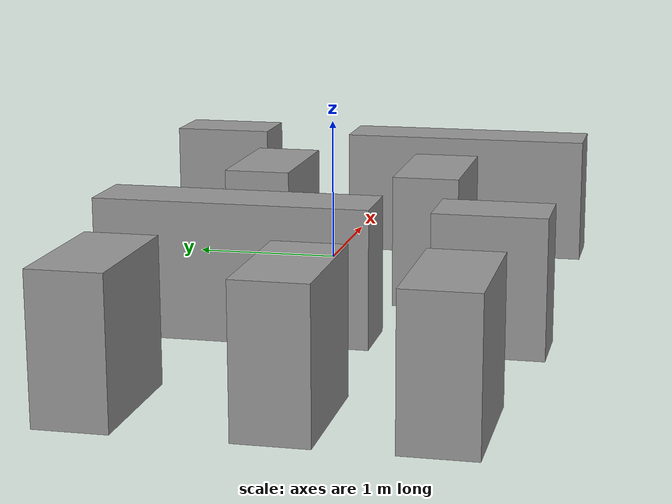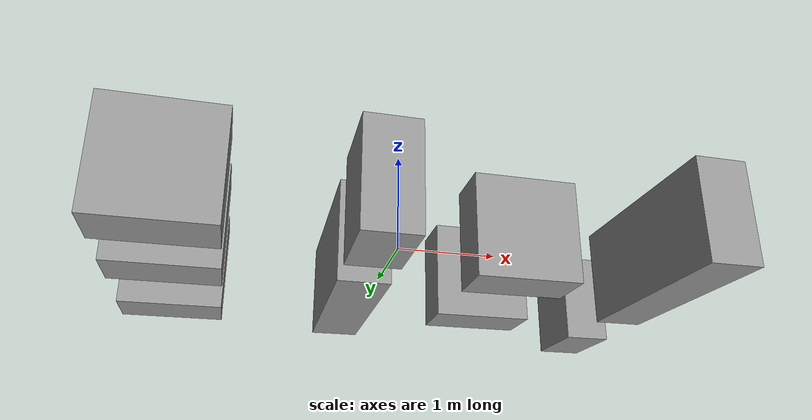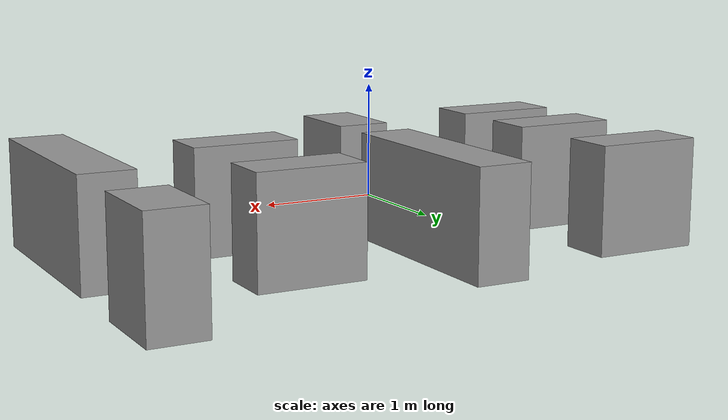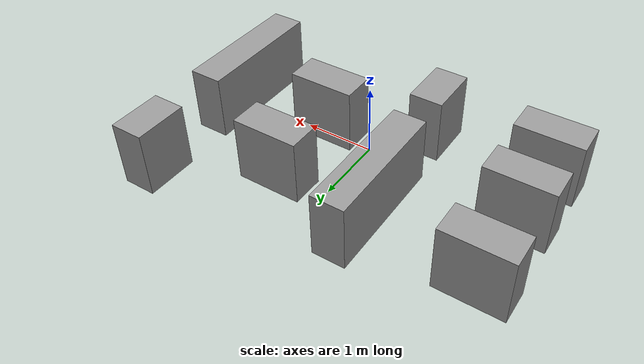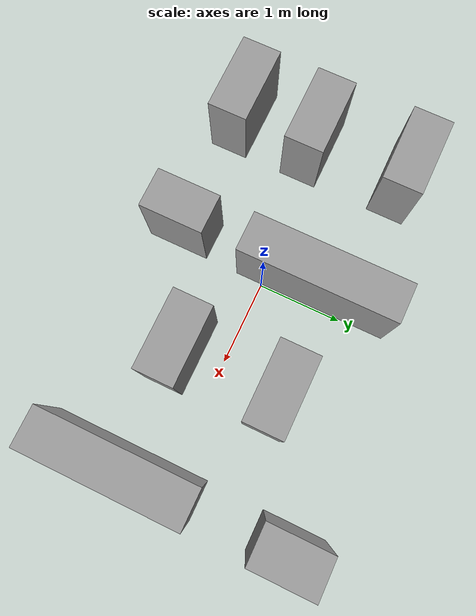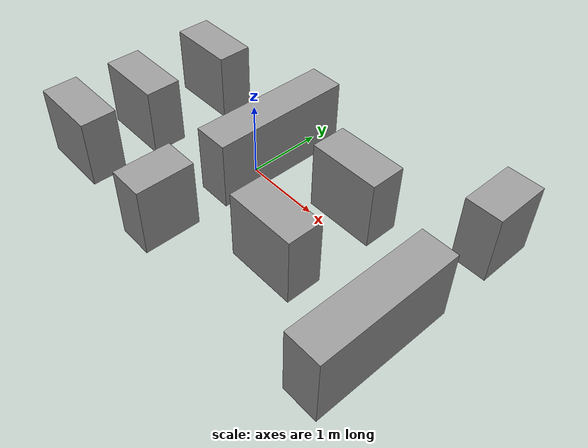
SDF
<?xml version='1.0'?>
<sdf version='1.7'>
  <model name='MAZE'>
    <link name='link_0'>
      <inertial>
        <mass>1</mass>
        <inertia>
          <ixx>0.166667</ixx>
          <ixy>0</ixy>
          <ixz>0</ixz>
          <iyy>0.166667</iyy>
          <iyz>0</iyz>
          <izz>0.166667</izz>
        </inertia>
        <pose>0 0 0 0 -0 0</pose>
      </inertial>
      <pose>-2.15855 1.01643 0 0 -0 0</pose>
      <gravity>1</gravity>
      <self_collide>0</self_collide>
      <kinematic>0</kinematic>
      <enable_wind>0</enable_wind>
      <visual name='visual'>
        <pose>0 0 0 0 -0 0</pose>
        <geometry>
          <box>
            <size>1 0.5 1</size>
          </box>
        </geometry>
        <material>
          <lighting>1</lighting>
          <script>
            <uri>file://media/materials/scripts/gazebo.material</uri>
            <name>Gazebo/Grey</name>
          </script>
          <shader type='pixel'>
            <normal_map>__default__</normal_map>
          </shader>
          <ambient>0.3 0.3 0.3 1</ambient>
          <diffuse>0.7 0.7 0.7 1</diffuse>
          <specular>0.01 0.01 0.01 1</specular>
          <emissive>0 0 0 1</emissive>
        </material>
        <transparency>0</transparency>
        <cast_shadows>1</cast_shadows>
      </visual>
      <collision name='collision'>
        <laser_retro>0</laser_retro>
        <max_contacts>10</max_contacts>
        <pose>0 0 0 0 -0 0</pose>
        <geometry>
          <box>
            <size>1 0.5 1</size>
          </box>
        </geometry>
        <surface>
          <friction>
            <ode>
              <mu>1</mu>
              <mu2>1</mu2>
              <fdir1>0 0 0</fdir1>
              <slip1>0</slip1>
              <slip2>0</slip2>
            </ode>
            <torsional>
              <coefficient>1</coefficient>
              <patch_radius>0</patch_radius>
              <surface_radius>0</surface_radius>
              <use_patch_radius>1</use_patch_radius>
              <ode>
                <slip>0</slip>
              </ode>
            </torsional>
          </friction>
          <bounce>
            <restitution_coefficient>0</restitution_coefficient>
            <threshold>1e+06</threshold>
          </bounce>
          <contact>
            <collide_without_contact>0</collide_without_contact>
            <collide_without_contact_bitmask>1</collide_without_contact_bitmask>
            <collide_bitmask>1</collide_bitmask>
            <ode>
              <soft_cfm>0</soft_cfm>
              <soft_erp>0.2</soft_erp>
              <kp>1e+13</kp>
              <kd>1</kd>
              <max_vel>0.01</max_vel>
              <min_depth>0</min_depth>
            </ode>
            <bullet>
              <split_impulse>1</split_impulse>
              <split_impulse_penetration_threshold>-0.01</split_impulse_penetration_threshold>
              <soft_cfm>0</soft_cfm>
              <soft_erp>0.2</soft_erp>
              <kp>1e+13</kp>
              <kd>1</kd>
            </bullet>
          </contact>
        </surface>
      </collision>
    </link>
    <link name='link_0_clone'>
      <inertial>
        <mass>1</mass>
        <inertia>
          <ixx>0.166667</ixx>
          <ixy>0</ixy>
          <ixz>0</ixz>
          <iyy>0.166667</iyy>
          <iyz>0</iyz>
          <izz>0.166667</izz>
        </inertia>
        <pose>0 0 0 0 -0 0</pose>
      </inertial>
      <pose>-2.14472 -0.227008 0 0 -0 0</pose>
      <gravity>1</gravity>
      <self_collide>0</self_collide>
      <kinematic>0</kinematic>
      <enable_wind>0</enable_wind>
      <visual name='visual'>
        <pose>0 0 0 0 -0 0</pose>
        <geometry>
          <box>
            <size>1 0.5 1</size>
          </box>
        </geometry>
        <material>
          <lighting>1</lighting>
          <script>
            <uri>file://media/materials/scripts/gazebo.material</uri>
            <name>Gazebo/Grey</name>
          </script>
          <shader type='pixel'>
            <normal_map>__default__</normal_map>
          </shader>
          <ambient>0.3 0.3 0.3 1</ambient>
          <diffuse>0.7 0.7 0.7 1</diffuse>
          <specular>0.01 0.01 0.01 1</specular>
          <emissive>0 0 0 1</emissive>
        </material>
        <transparency>0</transparency>
        <cast_shadows>1</cast_shadows>
      </visual>
      <collision name='collision'>
        <laser_retro>0</laser_retro>
        <max_contacts>10</max_contacts>
        <pose>0 0 0 0 -0 0</pose>
        <geometry>
          <box>
            <size>1 0.5 1</size>
          </box>
        </geometry>
        <surface>
          <friction>
            <ode>
              <mu>1</mu>
              <mu2>1</mu2>
              <fdir1>0 0 0</fdir1>
              <slip1>0</slip1>
              <slip2>0</slip2>
            </ode>
            <torsional>
              <coefficient>1</coefficient>
              <patch_radius>0</patch_radius>
              <surface_radius>0</surface_radius>
              <use_patch_radius>1</use_patch_radius>
              <ode>
                <slip>0</slip>
              </ode>
            </torsional>
          </friction>
          <bounce>
            <restitution_coefficient>0</restitution_coefficient>
            <threshold>1e+06</threshold>
          </bounce>
          <contact>
            <collide_without_contact>0</collide_without_contact>
            <collide_without_contact_bitmask>1</collide_without_contact_bitmask>
            <collide_bitmask>1</collide_bitmask>
            <ode>
              <soft_cfm>0</soft_cfm>
              <soft_erp>0.2</soft_erp>
              <kp>1e+13</kp>
              <kd>1</kd>
              <max_vel>0.01</max_vel>
              <min_depth>0</min_depth>
            </ode>
            <bullet>
              <split_impulse>1</split_impulse>
              <split_impulse_penetration_threshold>-0.01</split_impulse_penetration_threshold>
              <soft_cfm>0</soft_cfm>
              <soft_erp>0.2</soft_erp>
              <kp>1e+13</kp>
              <kd>1</kd>
            </bullet>
          </contact>
        </surface>
      </collision>
    </link>
    <link name='link_0_clone_0'>
      <inertial>
        <mass>1</mass>
        <inertia>
          <ixx>0.166667</ixx>
          <ixy>0</ixy>
          <ixz>0</ixz>
          <iyy>0.166667</iyy>
          <iyz>0</iyz>
          <izz>0.166667</izz>
        </inertia>
        <pose>0 0 0 0 -0 0</pose>
      </inertial>
      <pose>-2.1412 -1.22475 0 0 -0 0</pose>
      <gravity>1</gravity>
      <self_collide>0</self_collide>
      <kinematic>0</kinematic>
      <enable_wind>0</enable_wind>
      <visual name='visual'>
        <pose>0 0 0 0 -0 0</pose>
        <geometry>
          <box>
            <size>1 0.5 1</size>
          </box>
        </geometry>
        <material>
          <lighting>1</lighting>
          <script>
            <uri>file://media/materials/scripts/gazebo.material</uri>
            <name>Gazebo/Grey</name>
          </script>
          <shader type='pixel'>
            <normal_map>__default__</normal_map>
          </shader>
          <ambient>0.3 0.3 0.3 1</ambient>
          <diffuse>0.7 0.7 0.7 1</diffuse>
          <specular>0.01 0.01 0.01 1</specular>
          <emissive>0 0 0 1</emissive>
        </material>
        <transparency>0</transparency>
        <cast_shadows>1</cast_shadows>
      </visual>
      <collision name='collision'>
        <laser_retro>0</laser_retro>
        <max_contacts>10</max_contacts>
        <pose>0 0 0 0 -0 0</pose>
        <geometry>
          <box>
            <size>1 0.5 1</size>
          </box>
        </geometry>
        <surface>
          <friction>
            <ode>
              <mu>1</mu>
              <mu2>1</mu2>
              <fdir1>0 0 0</fdir1>
              <slip1>0</slip1>
              <slip2>0</slip2>
            </ode>
            <torsional>
              <coefficient>1</coefficient>
              <patch_radius>0</patch_radius>
              <surface_radius>0</surface_radius>
              <use_patch_radius>1</use_patch_radius>
              <ode>
                <slip>0</slip>
              </ode>
            </torsional>
          </friction>
          <bounce>
            <restitution_coefficient>0</restitution_coefficient>
            <threshold>1e+06</threshold>
          </bounce>
          <contact>
            <collide_without_contact>0</collide_without_contact>
            <collide_without_contact_bitmask>1</collide_without_contact_bitmask>
            <collide_bitmask>1</collide_bitmask>
            <ode>
              <soft_cfm>0</soft_cfm>
              <soft_erp>0.2</soft_erp>
              <kp>1e+13</kp>
              <kd>1</kd>
              <max_vel>0.01</max_vel>
              <min_depth>0</min_depth>
            </ode>
            <bullet>
              <split_impulse>1</split_impulse>
              <split_impulse_penetration_threshold>-0.01</split_impulse_penetration_threshold>
              <soft_cfm>0</soft_cfm>
              <soft_erp>0.2</soft_erp>
              <kp>1e+13</kp>
              <kd>1</kd>
            </bullet>
          </contact>
        </surface>
      </collision>
    </link>
    <link name='link_0_clone_1'>
      <inertial>
        <mass>1</mass>
        <inertia>
          <ixx>0.166667</ixx>
          <ixy>0</ixy>
          <ixz>0</ixz>
          <iyy>0.166667</iyy>
          <iyz>0</iyz>
          <izz>0.166667</izz>
        </inertia>
        <pose>0 0 0 0 -0 0</pose>
      </inertial>
      <pose>-0.393911 0.603019 0 0 -0 0</pose>
      <gravity>1</gravity>
      <self_collide>0</self_collide>
      <kinematic>0</kinematic>
      <enable_wind>0</enable_wind>
      <visual name='visual'>
        <pose>0 0 0 0 -0 0</pose>
        <geometry>
          <box>
            <size>0.5 2 1</size>
          </box>
        </geometry>
        <material>
          <lighting>1</lighting>
          <script>
            <uri>file://media/materials/scripts/gazebo.material</uri>
            <name>Gazebo/Grey</name>
          </script>
          <shader type='pixel'>
            <normal_map>__default__</normal_map>
          </shader>
          <ambient>0.3 0.3 0.3 1</ambient>
          <diffuse>0.7 0.7 0.7 1</diffuse>
          <specular>0.01 0.01 0.01 1</specular>
          <emissive>0 0 0 1</emissive>
        </material>
        <transparency>0</transparency>
        <cast_shadows>1</cast_shadows>
      </visual>
      <collision name='collision'>
        <laser_retro>0</laser_retro>
        <max_contacts>10</max_contacts>
        <pose>0 0 0 0 -0 0</pose>
        <geometry>
          <box>
            <size>0.5 2 1</size>
          </box>
        </geometry>
        <surface>
          <friction>
            <ode>
              <mu>1</mu>
              <mu2>1</mu2>
              <fdir1>0 0 0</fdir1>
              <slip1>0</slip1>
              <slip2>0</slip2>
            </ode>
            <torsional>
              <coefficient>1</coefficient>
              <patch_radius>0</patch_radius>
              <surface_radius>0</surface_radius>
              <use_patch_radius>1</use_patch_radius>
              <ode>
                <slip>0</slip>
              </ode>
            </torsional>
          </friction>
          <bounce>
            <restitution_coefficient>0</restitution_coefficient>
            <threshold>1e+06</threshold>
          </bounce>
          <contact>
            <collide_without_contact>0</collide_without_contact>
            <collide_without_contact_bitmask>1</collide_without_contact_bitmask>
            <collide_bitmask>1</collide_bitmask>
            <ode>
              <soft_cfm>0</soft_cfm>
              <soft_erp>0.2</soft_erp>
              <kp>1e+13</kp>
              <kd>1</kd>
              <max_vel>0.01</max_vel>
              <min_depth>0</min_depth>
            </ode>
            <bullet>
              <split_impulse>1</split_impulse>
              <split_impulse_penetration_threshold>-0.01</split_impulse_penetration_threshold>
              <soft_cfm>0</soft_cfm>
              <soft_erp>0.2</soft_erp>
              <kp>1e+13</kp>
              <kd>1</kd>
            </bullet>
          </contact>
        </surface>
      </collision>
    </link>
    <link name='link_0_clone_1_clone'>
      <inertial>
        <mass>1</mass>
        <inertia>
          <ixx>0.166667</ixx>
          <ixy>0</ixy>
          <ixz>0</ixz>
          <iyy>0.166667</iyy>
          <iyz>0</iyz>
          <izz>0.166667</izz>
        </inertia>
        <pose>0 0 0 0 -0 0</pose>
      </inertial>
      <pose>-0.400091 -1.22987 0 0 -0 0</pose>
      <gravity>1</gravity>
      <self_collide>0</self_collide>
      <kinematic>0</kinematic>
      <enable_wind>0</enable_wind>
      <visual name='visual'>
        <pose>0 0 0 0 -0 0</pose>
        <geometry>
          <box>
            <size>0.5 0.8 1</size>
          </box>
        </geometry>
        <material>
          <lighting>1</lighting>
          <script>
            <uri>file://media/materials/scripts/gazebo.material</uri>
            <name>Gazebo/Grey</name>
          </script>
          <shader type='pixel'>
            <normal_map>__default__</normal_map>
          </shader>
          <ambient>0.3 0.3 0.3 1</ambient>
          <diffuse>0.7 0.7 0.7 1</diffuse>
          <specular>0.01 0.01 0.01 1</specular>
          <emissive>0 0 0 1</emissive>
        </material>
        <transparency>0</transparency>
        <cast_shadows>1</cast_shadows>
      </visual>
      <collision name='collision'>
        <laser_retro>0</laser_retro>
        <max_contacts>10</max_contacts>
        <pose>0 0 0 0 -0 0</pose>
        <geometry>
          <box>
            <size>0.5 0.8 1</size>
          </box>
        </geometry>
        <surface>
          <friction>
            <ode>
              <mu>1</mu>
              <mu2>1</mu2>
              <fdir1>0 0 0</fdir1>
              <slip1>0</slip1>
              <slip2>0</slip2>
            </ode>
            <torsional>
              <coefficient>1</coefficient>
              <patch_radius>0</patch_radius>
              <surface_radius>0</surface_radius>
              <use_patch_radius>1</use_patch_radius>
              <ode>
                <slip>0</slip>
              </ode>
            </torsional>
          </friction>
          <bounce>
            <restitution_coefficient>0</restitution_coefficient>
            <threshold>1e+06</threshold>
          </bounce>
          <contact>
            <collide_without_contact>0</collide_without_contact>
            <collide_without_contact_bitmask>1</collide_without_contact_bitmask>
            <collide_bitmask>1</collide_bitmask>
            <ode>
              <soft_cfm>0</soft_cfm>
              <soft_erp>0.2</soft_erp>
              <kp>1e+13</kp>
              <kd>1</kd>
              <max_vel>0.01</max_vel>
              <min_depth>0</min_depth>
            </ode>
            <bullet>
              <split_impulse>1</split_impulse>
              <split_impulse_penetration_threshold>-0.01</split_impulse_penetration_threshold>
              <soft_cfm>0</soft_cfm>
              <soft_erp>0.2</soft_erp>
              <kp>1e+13</kp>
              <kd>1</kd>
            </bullet>
          </contact>
        </surface>
      </collision>
    </link>
    <link name='link_0_clone_1_clone_0'>
      <inertial>
        <mass>1</mass>
        <inertia>
          <ixx>0.166667</ixx>
          <ixy>0</ixy>
          <ixz>0</ixz>
          <iyy>0.166667</iyy>
          <iyz>0</iyz>
          <izz>0.166667</izz>
        </inertia>
        <pose>0 0 0 0 -0 0</pose>
      </inertial>
      <pose>2.57024 -0.604209 0 0 -0 0</pose>
      <gravity>1</gravity>
      <self_collide>0</self_collide>
      <kinematic>0</kinematic>
      <enable_wind>0</enable_wind>
      <visual name='visual'>
        <pose>0 0 0 0 -0 0</pose>
        <geometry>
          <box>
            <size>0.5 2 1</size>
          </box>
        </geometry>
        <material>
          <lighting>1</lighting>
          <script>
            <uri>file://media/materials/scripts/gazebo.material</uri>
            <name>Gazebo/Grey</name>
          </script>
          <shader type='pixel'>
            <normal_map>__default__</normal_map>
          </shader>
          <ambient>0.3 0.3 0.3 1</ambient>
          <diffuse>0.7 0.7 0.7 1</diffuse>
          <specular>0.01 0.01 0.01 1</specular>
          <emissive>0 0 0 1</emissive>
        </material>
        <transparency>0</transparency>
        <cast_shadows>1</cast_shadows>
      </visual>
      <collision name='collision'>
        <laser_retro>0</laser_retro>
        <max_contacts>10</max_contacts>
        <pose>0 0 0 0 -0 0</pose>
        <geometry>
          <box>
            <size>0.5 2 1</size>
          </box>
        </geometry>
        <surface>
          <friction>
            <ode>
              <mu>1</mu>
              <mu2>1</mu2>
              <fdir1>0 0 0</fdir1>
              <slip1>0</slip1>
              <slip2>0</slip2>
            </ode>
            <torsional>
              <coefficient>1</coefficient>
              <patch_radius>0</patch_radius>
              <surface_radius>0</surface_radius>
              <use_patch_radius>1</use_patch_radius>
              <ode>
                <slip>0</slip>
              </ode>
            </torsional>
          </friction>
          <bounce>
            <restitution_coefficient>0</restitution_coefficient>
            <threshold>1e+06</threshold>
          </bounce>
          <contact>
            <collide_without_contact>0</collide_without_contact>
            <collide_without_contact_bitmask>1</collide_without_contact_bitmask>
            <collide_bitmask>1</collide_bitmask>
            <ode>
              <soft_cfm>0</soft_cfm>
              <soft_erp>0.2</soft_erp>
              <kp>1e+13</kp>
              <kd>1</kd>
              <max_vel>0.01</max_vel>
              <min_depth>0</min_depth>
            </ode>
            <bullet>
              <split_impulse>1</split_impulse>
              <split_impulse_penetration_threshold>-0.01</split_impulse_penetration_threshold>
              <soft_cfm>0</soft_cfm>
              <soft_erp>0.2</soft_erp>
              <kp>1e+13</kp>
              <kd>1</kd>
            </bullet>
          </contact>
        </surface>
      </collision>
    </link>
    <link name='link_0_clone_1_clone_clone'>
      <inertial>
        <mass>1</mass>
        <inertia>
          <ixx>0.166667</ixx>
          <ixy>0</ixy>
          <ixz>0</ixz>
          <iyy>0.166667</iyy>
          <iyz>0</iyz>
          <izz>0.166667</izz>
        </inertia>
        <pose>0 0 0 0 -0 0</pose>
      </inertial>
      <pose>2.58176 1.52586 0 0 -0 0</pose>
      <gravity>1</gravity>
      <self_collide>0</self_collide>
      <kinematic>0</kinematic>
      <enable_wind>0</enable_wind>
      <visual name='visual'>
        <pose>0 0 0 0 -0 0</pose>
        <geometry>
          <box>
            <size>0.5 0.8 1</size>
          </box>
        </geometry>
        <material>
          <lighting>1</lighting>
          <script>
            <uri>file://media/materials/scripts/gazebo.material</uri>
            <name>Gazebo/Grey</name>
          </script>
          <shader type='pixel'>
            <normal_map>__default__</normal_map>
          </shader>
          <ambient>0.3 0.3 0.3 1</ambient>
          <diffuse>0.7 0.7 0.7 1</diffuse>
          <specular>0.01 0.01 0.01 1</specular>
          <emissive>0 0 0 1</emissive>
        </material>
        <transparency>0</transparency>
        <cast_shadows>1</cast_shadows>
      </visual>
      <collision name='collision'>
        <laser_retro>0</laser_retro>
        <max_contacts>10</max_contacts>
        <pose>0 0 0 0 -0 0</pose>
        <geometry>
          <box>
            <size>0.5 0.8 1</size>
          </box>
        </geometry>
        <surface>
          <friction>
            <ode>
              <mu>1</mu>
              <mu2>1</mu2>
              <fdir1>0 0 0</fdir1>
              <slip1>0</slip1>
              <slip2>0</slip2>
            </ode>
            <torsional>
              <coefficient>1</coefficient>
              <patch_radius>0</patch_radius>
              <surface_radius>0</surface_radius>
              <use_patch_radius>1</use_patch_radius>
              <ode>
                <slip>0</slip>
              </ode>
            </torsional>
          </friction>
          <bounce>
            <restitution_coefficient>0</restitution_coefficient>
            <threshold>1e+06</threshold>
          </bounce>
          <contact>
            <collide_without_contact>0</collide_without_contact>
            <collide_without_contact_bitmask>1</collide_without_contact_bitmask>
            <collide_bitmask>1</collide_bitmask>
            <ode>
              <soft_cfm>0</soft_cfm>
              <soft_erp>0.2</soft_erp>
              <kp>1e+13</kp>
              <kd>1</kd>
              <max_vel>0.01</max_vel>
              <min_depth>0</min_depth>
            </ode>
            <bullet>
              <split_impulse>1</split_impulse>
              <split_impulse_penetration_threshold>-0.01</split_impulse_penetration_threshold>
              <soft_cfm>0</soft_cfm>
              <soft_erp>0.2</soft_erp>
              <kp>1e+13</kp>
              <kd>1</kd>
            </bullet>
          </contact>
        </surface>
      </collision>
    </link>
    <link name='link_0_clone_clone'>
      <inertial>
        <mass>1</mass>
        <inertia>
          <ixx>0.166667</ixx>
          <ixy>0</ixy>
          <ixz>0</ixz>
          <iyy>0.166667</iyy>
          <iyz>0</iyz>
          <izz>0.166667</izz>
        </inertia>
        <pose>0 0 0 0 -0 0</pose>
      </inertial>
      <pose>1.04324 -0.584471 0 0 -0 0</pose>
      <gravity>1</gravity>
      <self_collide>0</self_collide>
      <kinematic>0</kinematic>
      <enable_wind>0</enable_wind>
      <visual name='visual'>
        <pose>0 0 0 0 -0 0</pose>
        <geometry>
          <box>
            <size>1 0.5 1</size>
          </box>
        </geometry>
        <material>
          <lighting>1</lighting>
          <script>
            <uri>file://media/materials/scripts/gazebo.material</uri>
            <name>Gazebo/Grey</name>
          </script>
          <shader type='pixel'>
            <normal_map>__default__</normal_map>
          </shader>
          <ambient>0.3 0.3 0.3 1</ambient>
          <diffuse>0.7 0.7 0.7 1</diffuse>
          <specular>0.01 0.01 0.01 1</specular>
          <emissive>0 0 0 1</emissive>
        </material>
        <transparency>0</transparency>
        <cast_shadows>1</cast_shadows>
      </visual>
      <collision name='collision'>
        <laser_retro>0</laser_retro>
        <max_contacts>10</max_contacts>
        <pose>0 0 0 0 -0 0</pose>
        <geometry>
          <box>
            <size>1 0.5 1</size>
          </box>
        </geometry>
        <surface>
          <friction>
            <ode>
              <mu>1</mu>
              <mu2>1</mu2>
              <fdir1>0 0 0</fdir1>
              <slip1>0</slip1>
              <slip2>0</slip2>
            </ode>
            <torsional>
              <coefficient>1</coefficient>
              <patch_radius>0</patch_radius>
              <surface_radius>0</surface_radius>
              <use_patch_radius>1</use_patch_radius>
              <ode>
                <slip>0</slip>
              </ode>
            </torsional>
          </friction>
          <bounce>
            <restitution_coefficient>0</restitution_coefficient>
            <threshold>1e+06</threshold>
          </bounce>
          <contact>
            <collide_without_contact>0</collide_without_contact>
            <collide_without_contact_bitmask>1</collide_without_contact_bitmask>
            <collide_bitmask>1</collide_bitmask>
            <ode>
              <soft_cfm>0</soft_cfm>
              <soft_erp>0.2</soft_erp>
              <kp>1e+13</kp>
              <kd>1</kd>
              <max_vel>0.01</max_vel>
              <min_depth>0</min_depth>
            </ode>
            <bullet>
              <split_impulse>1</split_impulse>
              <split_impulse_penetration_threshold>-0.01</split_impulse_penetration_threshold>
              <soft_cfm>0</soft_cfm>
              <soft_erp>0.2</soft_erp>
              <kp>1e+13</kp>
              <kd>1</kd>
            </bullet>
          </contact>
        </surface>
      </collision>
    </link>
    <link name='link_0_clone_clone_0'>
      <inertial>
        <mass>1</mass>
        <inertia>
          <ixx>0.166667</ixx>
          <ixy>0</ixy>
          <ixz>0</ixz>
          <iyy>0.166667</iyy>
          <iyz>0</iyz>
          <izz>0.166667</izz>
        </inertia>
        <pose>0 0 0 0 -0 0</pose>
      </inertial>
      <pose>1.04324 0.725009 0 0 -0 0</pose>
      <gravity>1</gravity>
      <self_collide>0</self_collide>
      <kinematic>0</kinematic>
      <enable_wind>0</enable_wind>
      <visual name='visual'>
        <pose>0 0 0 0 -0 0</pose>
        <geometry>
          <box>
            <size>1 0.5 1</size>
          </box>
        </geometry>
        <material>
          <lighting>1</lighting>
          <script>
            <uri>file://media/materials/scripts/gazebo.material</uri>
            <name>Gazebo/Grey</name>
          </script>
          <shader type='pixel'>
            <normal_map>__default__</normal_map>
          </shader>
          <ambient>0.3 0.3 0.3 1</ambient>
          <diffuse>0.7 0.7 0.7 1</diffuse>
          <specular>0.01 0.01 0.01 1</specular>
          <emissive>0 0 0 1</emissive>
        </material>
        <transparency>0</transparency>
        <cast_shadows>1</cast_shadows>
      </visual>
      <collision name='collision'>
        <laser_retro>0</laser_retro>
        <max_contacts>10</max_contacts>
        <pose>0 0 0 0 -0 0</pose>
        <geometry>
          <box>
            <size>1 0.5 1</size>
          </box>
        </geometry>
        <surface>
          <friction>
            <ode>
              <mu>1</mu>
              <mu2>1</mu2>
              <fdir1>0 0 0</fdir1>
              <slip1>0</slip1>
              <slip2>0</slip2>
            </ode>
            <torsional>
              <coefficient>1</coefficient>
              <patch_radius>0</patch_radius>
              <surface_radius>0</surface_radius>
              <use_patch_radius>1</use_patch_radius>
              <ode>
                <slip>0</slip>
              </ode>
            </torsional>
          </friction>
          <bounce>
            <restitution_coefficient>0</restitution_coefficient>
            <threshold>1e+06</threshold>
          </bounce>
          <contact>
            <collide_without_contact>0</collide_without_contact>
            <collide_without_contact_bitmask>1</collide_without_contact_bitmask>
            <collide_bitmask>1</collide_bitmask>
            <ode>
              <soft_cfm>0</soft_cfm>
              <soft_erp>0.2</soft_erp>
              <kp>1e+13</kp>
              <kd>1</kd>
              <max_vel>0.01</max_vel>
              <min_depth>0</min_depth>
            </ode>
            <bullet>
              <split_impulse>1</split_impulse>
              <split_impulse_penetration_threshold>-0.01</split_impulse_penetration_threshold>
              <soft_cfm>0</soft_cfm>
              <soft_erp>0.2</soft_erp>
              <kp>1e+13</kp>
              <kd>1</kd>
            </bullet>
          </contact>
        </surface>
      </collision>
    </link>
    <static>0</static>
    <allow_auto_disable>1</allow_auto_disable>
  </model>
</sdf>
